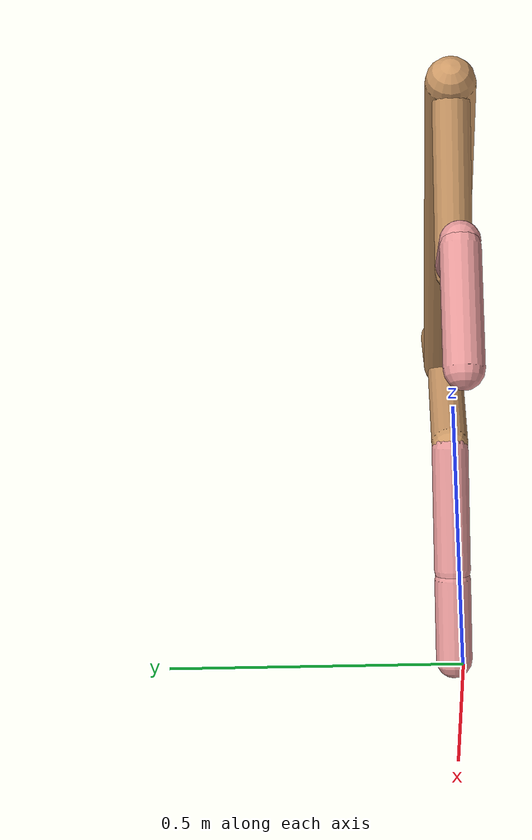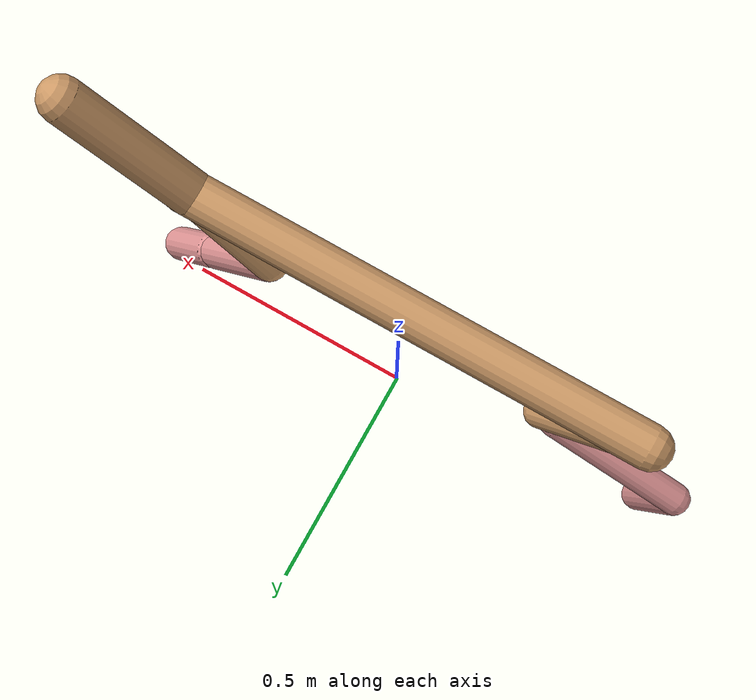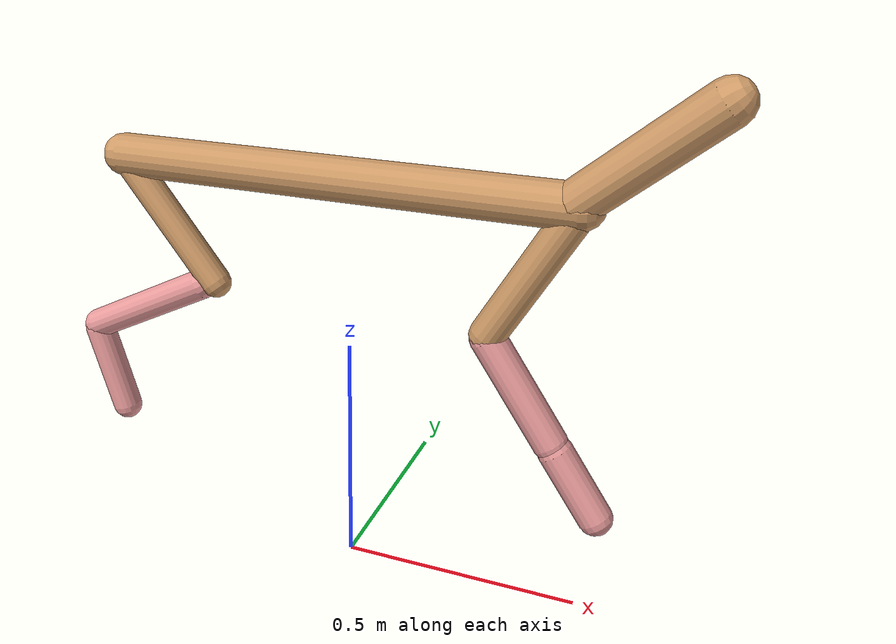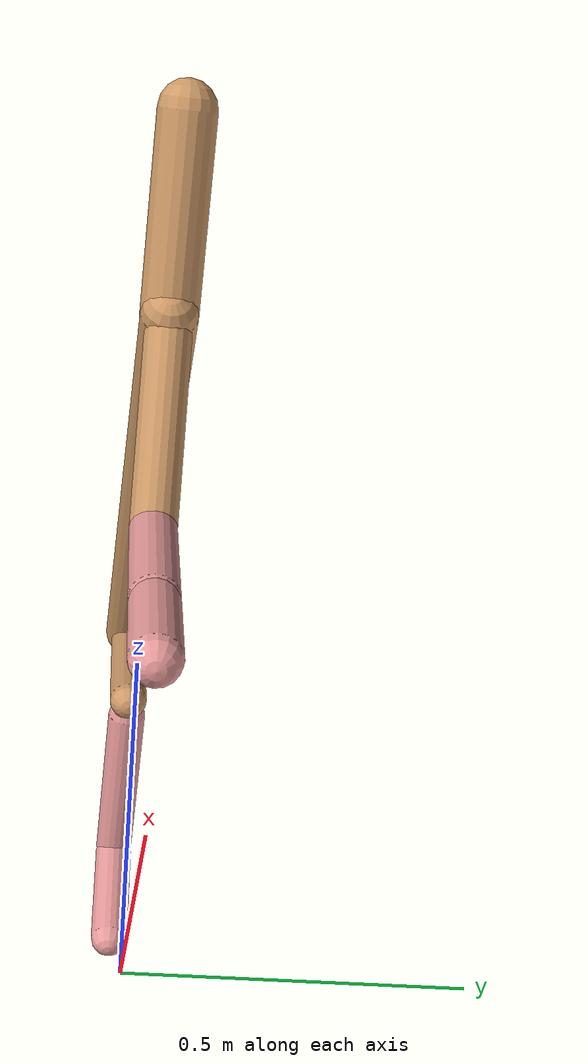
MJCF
<mujoco model="cheetah">
  <compiler angle="radian" coordinate="local" inertiafromgeom="true" settotalmass="14" />
  <default>
    <joint armature=".1" damping=".01" limited="true" solimplimit="0 .8 .03" solreflimit=".02 1" stiffness="8" />
    <geom conaffinity="0" condim="3" contype="1" friction="0.8 .1 .1" rgba="0.8 0.6 .4 1" solimp="0.0 0.8 0.01" solref="0.02 1" />
    <motor ctrllimited="true" ctrlrange="-1 1" />
  </default>
  <size nstack="300000" nuser_geom="1" />
  <option gravity="0 0 -9.81" timestep="0.01" />
  <worldbody>
    <body name="torso" pos="0.0 0.0 0.8453631256939856">
      <joint armature="0" axis="1 0 0" damping="0" limited="false" name="ignorex" pos="0 0 0" stiffness="0" type="slide" />
      <joint armature="0" axis="0 0 1" damping="0" limited="false" name="ignorez" pos="0 0 0" stiffness="0" type="slide" />
      <joint armature="0" axis="0 1 0" damping="0" limited="false" name="ignorey" pos="0 0 0" stiffness="0" type="hinge" />
      <geom fromto="-0.5 0.0 0.0 0.44029080174500584 0.0 0.0" name="torso" size="0.043398504491721036" type="capsule" />
      <geom axisangle="0 1 0 .87" name="head" pos="0.5402908017450058 0.0 0.1" size="0.044048256263680766 0.15" type="capsule" />

      <body name="bthigh" pos="-.5 0 0">
        <joint axis="0 1 0" damping="6" name="bthigh" pos="0 0 0" range="-.52 1.05" stiffness="240" type="hinge" />
        <geom axisangle="0 1 0 -3.8" name="bthigh" pos="0.10299737345583043 0.0 -0.13389658549257957" size="0.03231713087203579 0.14991605798732055" type="capsule" />
        <body name="bshin" pos="0.16599474691166086 0.0 -0.25779317098515914">
          <joint axis="0 1 0" damping="4.5" name="bshin" pos="0 0 0" range="-.785 .785" stiffness="180" type="hinge" />
          <geom axisangle="0 1 0 -2.03" name="bshin" pos="-0.14454867855488812 0.0 -0.07227433927744406" rgba="0.9 0.6 0.6 1" size="0.03231713087203579 0.15508557722826266" type="capsule" />
          <body name="bfoot" pos="-0.28909735710977624 0.0 -0.14454867855488812">
            <joint axis="0 1 0" damping="3" name="bfoot" pos="0 0 0" range="-.4 .785" stiffness="120" type="hinge" />
            <geom axisangle="0 1 0 -.27" name="bfoot" pos="0.03094165069924102 0.0 -0.10004467059421264" rgba="0.9 0.6 0.6 1" size="0.03231713087203579 0.09718696172971127" type="capsule" />
            <inertial mass="10" />
          </body>
        </body>
      </body>
      <body name="fthigh" pos="0.4402908017450058 0.0 0.0">
        <joint axis="0 1 0" damping="4.5" name="fthigh" pos="0 0 0" range="-1.5 0.8" stiffness="180" type="hinge" />
        <geom axisangle="0 1 0 .52" name="fthigh" pos="-0.08018984052284145 0.0 -0.13746829803915678" size="0.03572229641742961 0.1532231126750001" type="capsule" />
        <body name="fshin" pos="-0.1603796810456829 0.0 -0.27493659607831356">
          <joint axis="0 1 0" damping="3" name="fshin" pos="0 0 0" range="-1.2 1.1" stiffness="120" type="hinge" />
          <geom axisangle="0 1 0 -.6" name="fshin" pos="0.07443674280223703 0.0 -0.10306625926463588" rgba="0.9 0.6 0.6 1" size="0.03572229641742961 0.12211766874849632" type="capsule" />
          <body name="ffoot" pos="0.14887348560447405 0.0 -0.20613251852927175">
            <joint axis="0 1 0" damping="1.5" name="ffoot" pos="0 0 0" range="-3.1 -0.3" stiffness="60" type="hinge" />
            <geom axisangle="0 1 0 -.6" name="ffoot" pos="0.050755685104733966 0.0 -0.0789532879406973" rgba="0.9 0.6 0.6 1" size="0.03572229641742961 0.08064374351315795" type="capsule" />
            <inertial mass="10" />
          </body>
        </body>
      </body>
    </body>
  </worldbody>
  <actuator>
    <motor gear="120" joint="bthigh" name="bthigh" />
    <motor gear="90" joint="bshin" name="bshin" />
    <motor gear="60" joint="bfoot" name="bfoot" />
    <motor gear="120" joint="fthigh" name="fthigh" />
    <motor gear="60" joint="fshin" name="fshin" />
    <motor gear="30" joint="ffoot" name="ffoot" />
  </actuator>
</mujoco>
